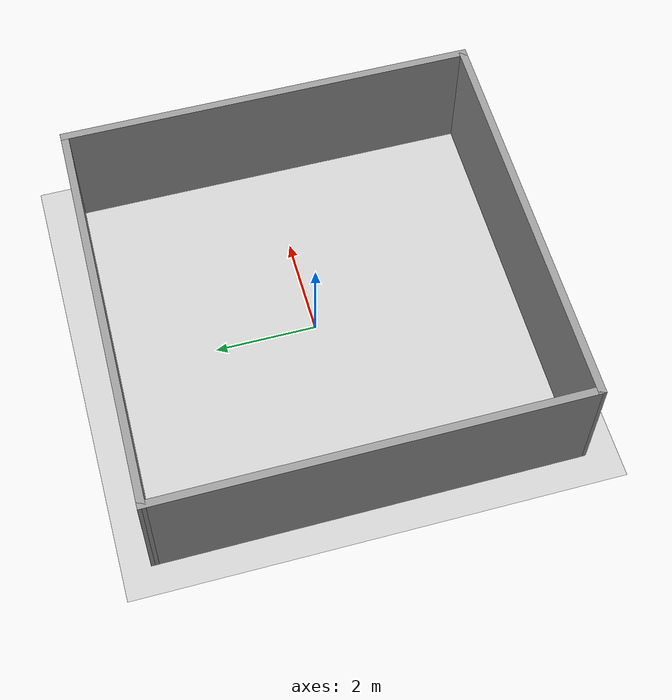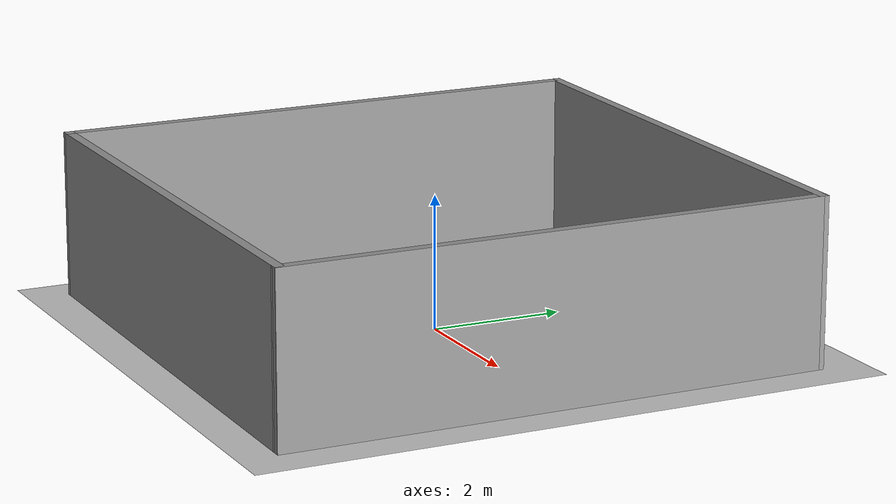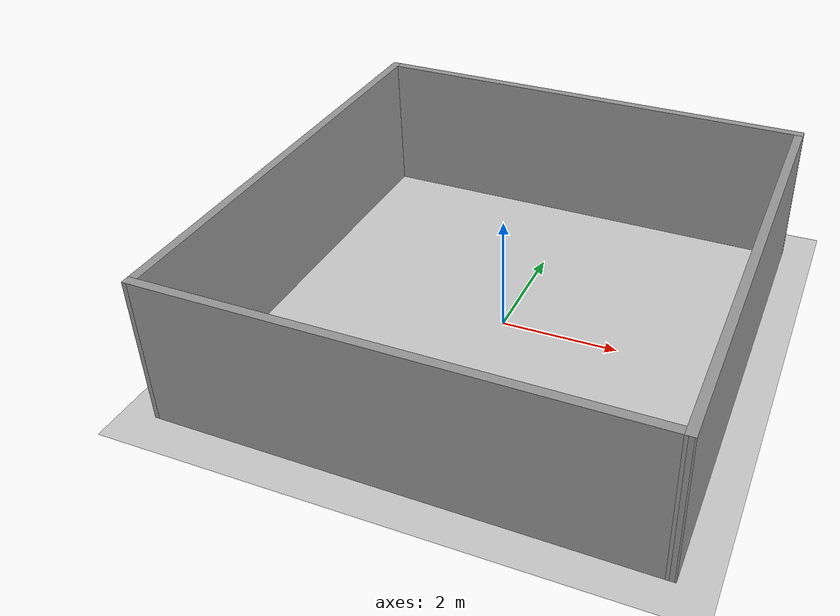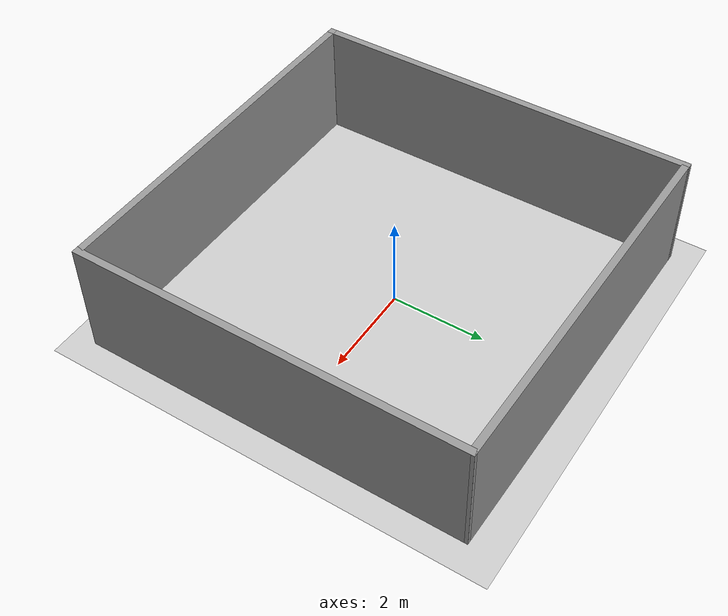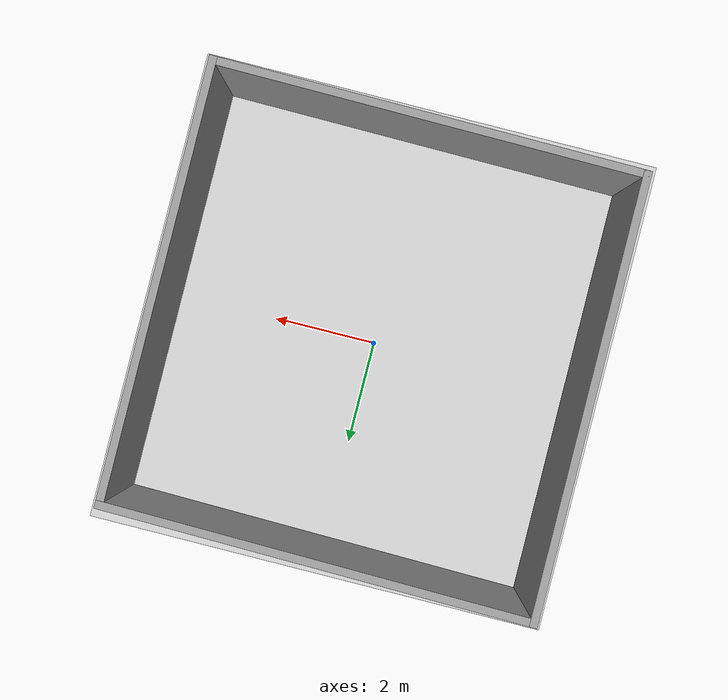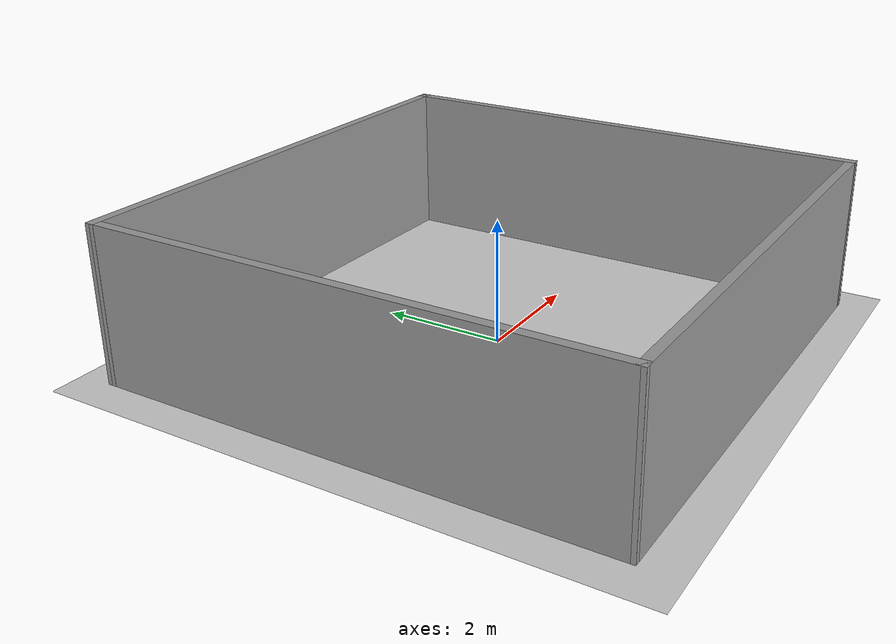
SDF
<sdf version="1.7">
 <world name="default">
  <light name="sun" type="directional">
   <pose>0 0 10 0 -0 0</pose>
   <diffuse>0.8 0.8 0.8 1</diffuse>
   <specular>0.2 0.2 0.2 1</specular>
   <attenuation>
    <range>1000</range>
    <constant>0.9</constant>
    <linear>0.01</linear>
    <quadratic>0.001</quadratic>
   </attenuation>
   <direction>-0.5 0.1 -0.9</direction>
   <spot><inner_angle>0</inner_angle><outer_angle>0</outer_angle><falloff>0</falloff></spot>
  </light>
  <model name="ground_plane">
   <static>1</static>
   <link name="link">
    <collision name="collision">
     <geometry><plane><normal>0 0 1</normal><size>100 100</size></plane></geometry>
     <surface><friction><ode><mu>100</mu><mu2>50</mu2></ode></friction></surface>
    </collision>
    <visual name="visual">
     <cast_shadows>0</cast_shadows>
     <geometry><plane><normal>0 0 1</normal><size>100 100</size></plane></geometry>
     <material>
      <script><uri>file://media/materials/scripts/gazebo.material</uri><name>Gazebo/Grey</name></script>
     </material>
    </visual>
   </link>
  </model>
  <gravity>0 0 -9.8</gravity>
  <magnetic_field>6e-06 2.3e-05 -4.2e-05</magnetic_field>
  <atmosphere type="adiabatic"/>
  <physics type="ode">
   <max_step_size>0.001</max_step_size>
   <real_time_factor>1</real_time_factor>
   <real_time_update_rate>1000</real_time_update_rate>
  </physics>
  <scene><ambient>0.4 0.4 0.4 1</ambient><background>0.7 0.7 0.7 1</background><shadows>1</shadows></scene>
  <spherical_coordinates>
   <surface_model>EARTH_WGS84</surface_model>
   <latitude_deg>0</latitude_deg>
   <longitude_deg>0</longitude_deg>
   <elevation>0</elevation>
   <heading_deg>0</heading_deg>
  </spherical_coordinates>
  <model name="minh_wall">
   <pose>0.013326 -0.035488 0 0 -0 0</pose>
   <link name="Wall_0">
    <collision name="Wall_0_Collision">
     <geometry><box><size>8.3139 0.15 2.5</size></box></geometry>
     <pose>0 0 1.25 0 -0 0</pose>
    </collision>
    <visual name="Wall_0_Visual">
     <pose>0 0 1.25 0 -0 0</pose>
     <geometry><box><size>8.3139 0.15 2.5</size></box></geometry>
     <material>
      <script><uri>file://media/materials/scripts/gazebo.material</uri><name>Gazebo/Grey</name></script>
      <ambient>1 1 1 1</ambient>
     </material>
     <meta><layer>0</layer></meta>
    </visual>
    <pose>-3.96626 0.03223 0 0 -0 1.57317</pose>
   </link>
   <link name="Wall_1">
    <collision name="Wall_1_Collision">
     <geometry><box><size>8.10297 0.15 2.5</size></box></geometry>
     <pose>0 0 1.25 0 -0 0</pose>
    </collision>
    <visual name="Wall_1_Visual">
     <pose>0 0 1.25 0 -0 0</pose>
     <geometry><box><size>8.10297 0.15 2.5</size></box></geometry>
     <material>
      <script><uri>file://media/materials/scripts/gazebo.material</uri><name>Gazebo/Grey</name></script>
      <ambient>1 1 1 1</ambient>
     </material>
     <meta><layer>0</layer></meta>
    </visual>
    <pose>0 4.0497 0 0 -0 -0.016213</pose>
   </link>
   <link name="Wall_2">
    <collision name="Wall_2_Collision">
     <geometry><box><size>8.25 0.15 2.5</size></box></geometry>
     <pose>0 0 1.25 0 -0 0</pose>
    </collision>
    <visual name="Wall_2_Visual">
     <pose>0 0 1.25 0 -0 0</pose>
     <geometry><box><size>8.25 0.15 2.5</size></box></geometry>
     <material>
      <script><uri>file://media/materials/scripts/gazebo.material</uri><name>Gazebo/Grey</name></script>
      <ambient>1 1 1 1</ambient>
     </material>
     <meta><layer>0</layer></meta>
    </visual>
    <pose>3.97596 -0.064762 0 0 -0 -1.5708</pose>
   </link>
   <link name="Wall_3">
    <collision name="Wall_3_Collision">
     <geometry><box><size>8.05965 0.15 2.5</size></box></geometry>
     <pose>0 0 1.25 0 -0 0</pose>
    </collision>
    <visual name="Wall_3_Visual">
     <pose>0 0 1.25 0 -0 0</pose>
     <geometry><box><size>8.05965 0.15 2.5</size></box></geometry>
     <material>
      <script><uri>file://media/materials/scripts/gazebo.material</uri><name>Gazebo/Grey</name></script>
      <ambient>1 1 1 1</ambient>
     </material>
     <meta><layer>0</layer></meta>
    </visual>
    <pose>-0.001857 -4.08224 0 0 -0 3.13337</pose>
   </link>
   <link name="Wall_4">
    <collision name="Wall_4_Collision">
     <geometry><box><size>0.15 0.15 2.5</size></box></geometry>
     <pose>0 0 1.25 0 -0 0</pose>
    </collision>
    <visual name="Wall_4_Visual">
     <pose>0 0 1.25 0 -0 0</pose>
     <geometry><box><size>0.15 0.15 2.5</size></box></geometry>
     <material>
      <script><uri>file://media/materials/scripts/gazebo.material</uri><name>Gazebo/Grey</name></script>
      <ambient>1 1 1 1</ambient>
     </material>
     <meta><layer>0</layer></meta>
    </visual>
    <pose>-3.95655 -4.04971 0 0 -0 0</pose>
   </link>
   <static>1</static>
  </model>
 </world>
</sdf>
